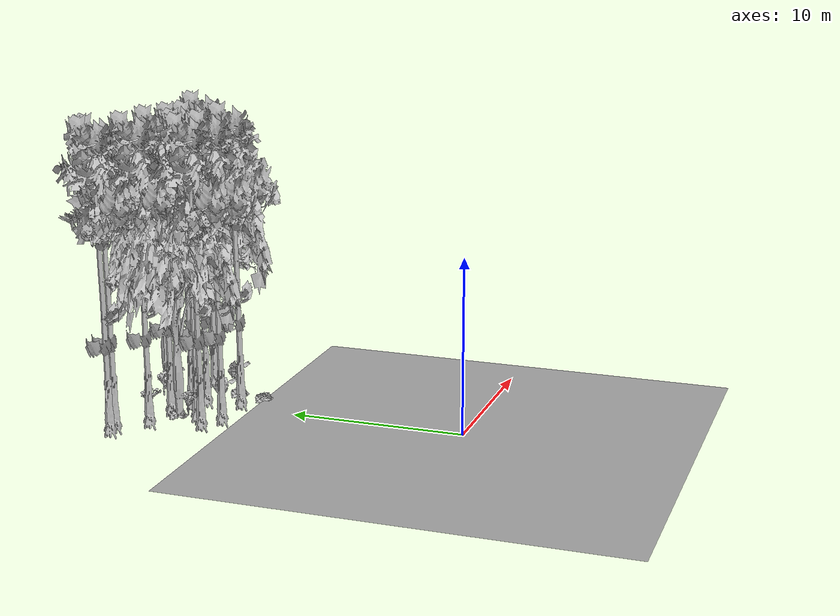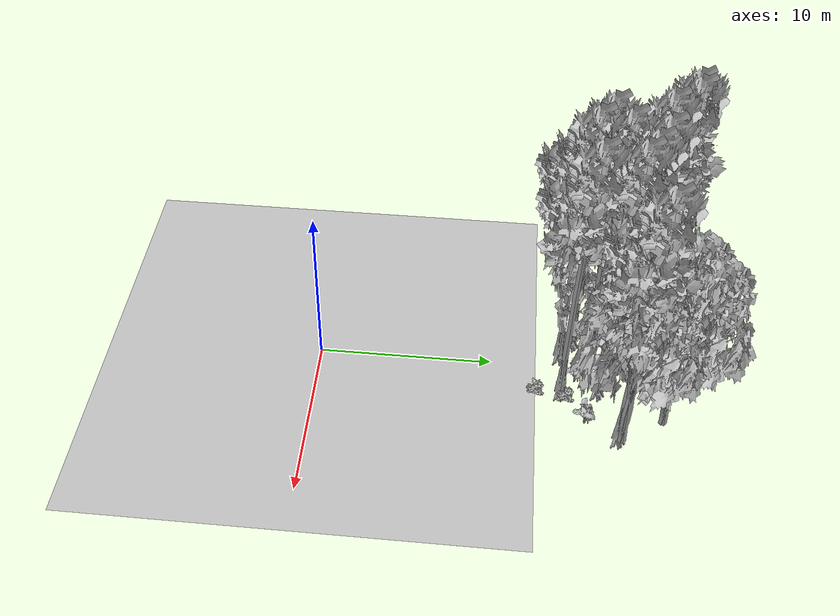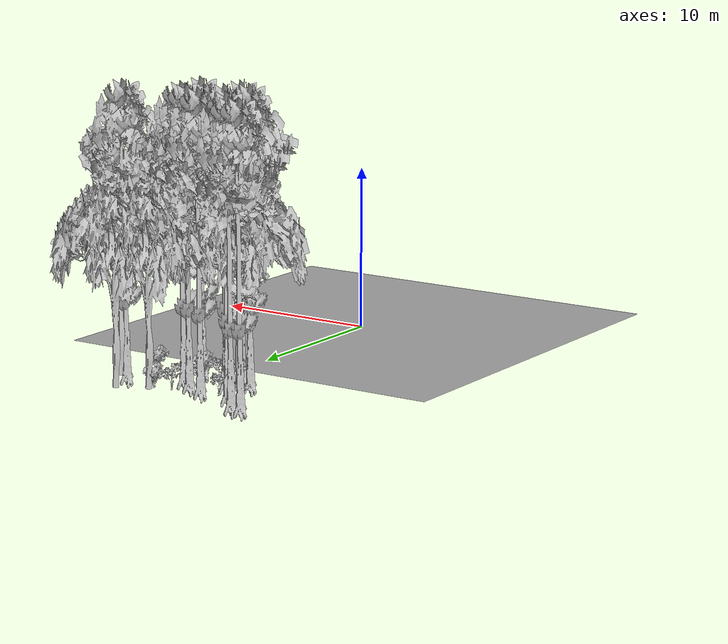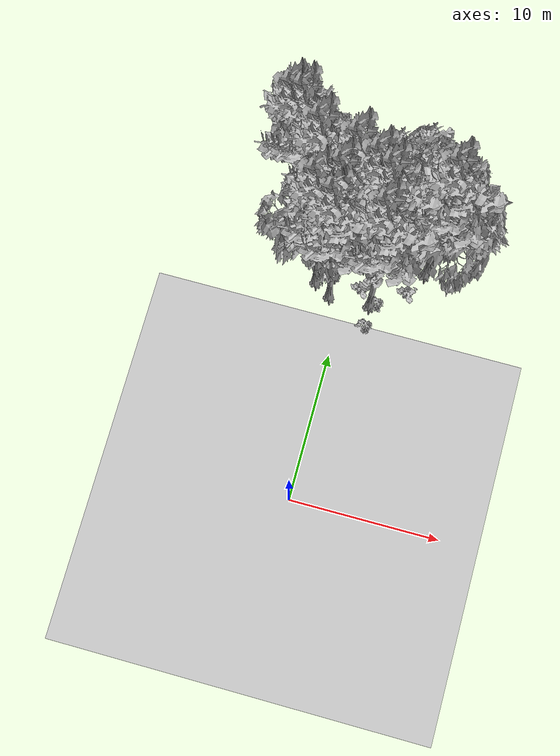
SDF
<sdf version="1.7">
 <world name="default">
  <model name="ground_plane">
   <static>1</static>
   <link name="link">
    <collision name="collision">
     <pose>-50 0 0 0 -0 0</pose>
     <geometry><plane><normal>0 0 1</normal><size>80 80</size></plane></geometry>
     <surface><contact><ode><min_depth>0.01</min_depth><max_vel>0</max_vel></ode></contact></surface>
    </collision>
    <visual name="grass">
     <cast_shadows>0</cast_shadows>
     <geometry>
      <mesh>
       <scale>0.46714285714285714 0.46714285714285714 0.1</scale>
       <uri>file://grass_plane/meshes/grass_plane.dae</uri>
      </mesh>
     </geometry>
    </visual>
   </link>
  </model>
  <model name="Tree 32">
   <static>1</static>
   <pose>-2.211010788499962 14.745970186259889 0 1.57079 -0 0</pose>
   <link name="link">
    <collision name="collision">
     <geometry><mesh><scale>3.5 5 3.5</scale><uri>model://tree_9/meshes/tree_9.obj</uri></mesh></geometry>
    </collision>
    <visual name="visual">
     <geometry><mesh><scale>3.5 5 3.5</scale><uri>model://tree_9/meshes/tree_9.obj</uri></mesh></geometry>
    </visual>
   </link>
  </model>
  <model name="Tree 160">
   <static>1</static>
   <pose>-1.0625133277352532 13.993021969646918 0 1.57079 -0 0</pose>
   <link name="link">
    <collision name="collision">
     <geometry><mesh><scale>3.5 5 3.5</scale><uri>model://tree_9/meshes/tree_9.obj</uri></mesh></geometry>
    </collision>
    <visual name="visual">
     <geometry><mesh><scale>3.5 5 3.5</scale><uri>model://tree_9/meshes/tree_9.obj</uri></mesh></geometry>
    </visual>
   </link>
  </model>
  <model name="Tree 226">
   <static>1</static>
   <pose>-2.415111901193036 16.012753184863435 0 1.57079 -0 0</pose>
   <link name="link">
    <collision name="collision">
     <geometry><mesh><scale>3.5 5 3.5</scale><uri>model://tree_2/meshes/tree_2.obj</uri></mesh></geometry>
    </collision>
    <visual name="visual">
     <geometry><mesh><scale>3.5 5 3.5</scale><uri>model://tree_2/meshes/tree_2.obj</uri></mesh></geometry>
    </visual>
   </link>
  </model>
  <model name="Tree 227">
   <static>1</static>
   <pose>-4.0903618427498145 19.15157052448214 0 1.57079 -0 0</pose>
   <link name="link">
    <collision name="collision">
     <geometry><mesh><scale>3.5 5 3.5</scale><uri>model://tree_9/meshes/tree_9.obj</uri></mesh></geometry>
    </collision>
    <visual name="visual">
     <geometry><mesh><scale>3.5 5 3.5</scale><uri>model://tree_9/meshes/tree_9.obj</uri></mesh></geometry>
    </visual>
   </link>
  </model>
  <model name="Tree 231">
   <static>1</static>
   <pose>-0.6444394086604746 17.389376756947883 0 1.57079 -0 0</pose>
   <link name="link">
    <collision name="collision">
     <geometry><mesh><scale>3.5 5 3.5</scale><uri>model://tree_9/meshes/tree_9.obj</uri></mesh></geometry>
    </collision>
    <visual name="visual">
     <geometry><mesh><scale>3.5 5 3.5</scale><uri>model://tree_9/meshes/tree_9.obj</uri></mesh></geometry>
    </visual>
   </link>
  </model>
  <model name="Tree 276">
   <static>1</static>
   <pose>3.5127701864332224 19.674306518027038 0 1.57079 -0 0</pose>
   <link name="link">
    <collision name="collision">
     <geometry><mesh><scale>3.5 5 3.5</scale><uri>model://tree_2/meshes/tree_2.obj</uri></mesh></geometry>
    </collision>
    <visual name="visual">
     <geometry><mesh><scale>3.5 5 3.5</scale><uri>model://tree_2/meshes/tree_2.obj</uri></mesh></geometry>
    </visual>
   </link>
  </model>
  <model name="Tree 289">
   <static>1</static>
   <pose>0.6661434180624823 16.70851243980956 0 1.57079 -0 0</pose>
   <link name="link">
    <collision name="collision">
     <geometry><mesh><scale>3.5 5 3.5</scale><uri>model://tree_9/meshes/tree_9.obj</uri></mesh></geometry>
    </collision>
    <visual name="visual">
     <geometry><mesh><scale>3.5 5 3.5</scale><uri>model://tree_9/meshes/tree_9.obj</uri></mesh></geometry>
    </visual>
   </link>
  </model>
  <model name="Tree 294">
   <static>1</static>
   <pose>1.7688372139915458 18.87727992651417 0 1.57079 -0 0</pose>
   <link name="link">
    <collision name="collision">
     <geometry><mesh><scale>3.5 5 3.5</scale><uri>model://tree_2/meshes/tree_2.obj</uri></mesh></geometry>
    </collision>
    <visual name="visual">
     <geometry><mesh><scale>3.5 5 3.5</scale><uri>model://tree_2/meshes/tree_2.obj</uri></mesh></geometry>
    </visual>
   </link>
  </model>
  <model name="Tree 298">
   <static>1</static>
   <pose>4.8116859067921425 17.195097264736923 0 1.57079 -0 0</pose>
   <link name="link">
    <collision name="collision">
     <geometry><mesh><scale>3.5 5 3.5</scale><uri>model://tree_9/meshes/tree_9.obj</uri></mesh></geometry>
    </collision>
    <visual name="visual">
     <geometry><mesh><scale>3.5 5 3.5</scale><uri>model://tree_9/meshes/tree_9.obj</uri></mesh></geometry>
    </visual>
   </link>
  </model>
  <model name="Tree 440">
   <static>1</static>
   <pose>-4.730386867249145 19.141418326548376 0 1.57079 -0 0</pose>
   <link name="link">
    <collision name="collision">
     <geometry><mesh><scale>3.5 5 3.5</scale><uri>model://tree_9/meshes/tree_9.obj</uri></mesh></geometry>
    </collision>
    <visual name="visual">
     <geometry><mesh><scale>3.5 5 3.5</scale><uri>model://tree_9/meshes/tree_9.obj</uri></mesh></geometry>
    </visual>
   </link>
  </model>
  <model name="Tree 443">
   <static>1</static>
   <pose>-1.0749345735249562 15.549331015186624 0 1.57079 -0 0</pose>
   <link name="link">
    <collision name="collision">
     <geometry><mesh><scale>3.5 5 3.5</scale><uri>model://tree_9/meshes/tree_9.obj</uri></mesh></geometry>
    </collision>
    <visual name="visual">
     <geometry><mesh><scale>3.5 5 3.5</scale><uri>model://tree_9/meshes/tree_9.obj</uri></mesh></geometry>
    </visual>
   </link>
  </model>
  <model name="Tree 515">
   <static>1</static>
   <pose>5.019973817405713 17.351699582494327 0 1.57079 -0 0</pose>
   <link name="link">
    <collision name="collision">
     <geometry><mesh><scale>3.5 5 3.5</scale><uri>model://tree_2/meshes/tree_2.obj</uri></mesh></geometry>
    </collision>
    <visual name="visual">
     <geometry><mesh><scale>3.5 5 3.5</scale><uri>model://tree_2/meshes/tree_2.obj</uri></mesh></geometry>
    </visual>
   </link>
  </model>
  <model name="Tree 530">
   <static>1</static>
   <pose>1.706826641536125 14.05381780522432 0 1.57079 -0 0</pose>
   <link name="link">
    <collision name="collision">
     <geometry><mesh><scale>3.5 5 3.5</scale><uri>model://tree_9/meshes/tree_9.obj</uri></mesh></geometry>
    </collision>
    <visual name="visual">
     <geometry><mesh><scale>3.5 5 3.5</scale><uri>model://tree_9/meshes/tree_9.obj</uri></mesh></geometry>
    </visual>
   </link>
  </model>
  <model name="Tree 535">
   <static>1</static>
   <pose>1.482548490597381 16.1550704479304 0 1.57079 -0 0</pose>
   <link name="link">
    <collision name="collision">
     <geometry><mesh><scale>3.5 5 3.5</scale><uri>model://tree_9/meshes/tree_9.obj</uri></mesh></geometry>
    </collision>
    <visual name="visual">
     <geometry><mesh><scale>3.5 5 3.5</scale><uri>model://tree_9/meshes/tree_9.obj</uri></mesh></geometry>
    </visual>
   </link>
  </model>
  <model name="Tree 538">
   <static>1</static>
   <pose>-2.780933831982516 17.697032057505325 0 1.57079 -0 0</pose>
   <link name="link">
    <collision name="collision">
     <geometry><mesh><scale>3.5 5 3.5</scale><uri>model://tree_9/meshes/tree_9.obj</uri></mesh></geometry>
    </collision>
    <visual name="visual">
     <geometry><mesh><scale>3.5 5 3.5</scale><uri>model://tree_9/meshes/tree_9.obj</uri></mesh></geometry>
    </visual>
   </link>
  </model>
  <model name="Bush 234">
   <static>1</static>
   <pose>2.077219256044728 14.327137941605699 0 1.57079 -0 0</pose>
   <link name="link">
    <collision name="collision">
     <geometry><mesh><scale>2 2 2</scale><uri>model://bush_2/meshes/bush_2.obj</uri></mesh></geometry>
     <surface><contact><collide_without_contact>false</collide_without_contact></contact></surface>
    </collision>
    <visual name="visual">
     <geometry><mesh><scale>2 2 2</scale><uri>model://bush_2/meshes/bush_2.obj</uri></mesh></geometry>
    </visual>
   </link>
  </model>
  <model name="Bush 303">
   <static>1</static>
   <pose>4.041465393816225 15.374945271335925 0 1.57079 -0 0</pose>
   <link name="link">
    <collision name="collision">
     <geometry><mesh><scale>2 2 2</scale><uri>model://bush_0/meshes/bush_0.obj</uri></mesh></geometry>
     <surface><contact><collide_without_contact>false</collide_without_contact></contact></surface>
    </collision>
    <visual name="visual">
     <geometry><mesh><scale>2 2 2</scale><uri>model://bush_0/meshes/bush_0.obj</uri></mesh></geometry>
    </visual>
   </link>
  </model>
  <model name="Bush 304">
   <static>1</static>
   <pose>0.5822049672851435 18.47011359764175 0 1.57079 -0 0</pose>
   <link name="link">
    <collision name="collision">
     <geometry><mesh><scale>2 2 2</scale><uri>model://bush_5/meshes/bush_5.obj</uri></mesh></geometry>
     <surface><contact><collide_without_contact>false</collide_without_contact></contact></surface>
    </collision>
    <visual name="visual">
     <geometry><mesh><scale>2 2 2</scale><uri>model://bush_5/meshes/bush_5.obj</uri></mesh></geometry>
    </visual>
   </link>
  </model>
  <model name="Bush 324">
   <static>1</static>
   <pose>1.752795954278561 18.577550841941076 0 1.57079 -0 0</pose>
   <link name="link">
    <collision name="collision">
     <geometry><mesh><scale>2 2 2</scale><uri>model://bush_0/meshes/bush_0.obj</uri></mesh></geometry>
     <surface><contact><collide_without_contact>false</collide_without_contact></contact></surface>
    </collision>
    <visual name="visual">
     <geometry><mesh><scale>2 2 2</scale><uri>model://bush_0/meshes/bush_0.obj</uri></mesh></geometry>
    </visual>
   </link>
  </model>
  <model name="Bush 387">
   <static>1</static>
   <pose>-1.9661002590930323 15.641780153889322 0 1.57079 -0 0</pose>
   <link name="link">
    <collision name="collision">
     <geometry><mesh><scale>2 2 2</scale><uri>model://bush_5/meshes/bush_5.obj</uri></mesh></geometry>
     <surface><contact><collide_without_contact>false</collide_without_contact></contact></surface>
    </collision>
    <visual name="visual">
     <geometry><mesh><scale>2 2 2</scale><uri>model://bush_5/meshes/bush_5.obj</uri></mesh></geometry>
    </visual>
   </link>
  </model>
  <model name="Bush 456">
   <static>1</static>
   <pose>1.7282600849588903 12.609528966641399 0 1.57079 -0 0</pose>
   <link name="link">
    <collision name="collision">
     <geometry><mesh><scale>2 2 2</scale><uri>model://bush_2/meshes/bush_2.obj</uri></mesh></geometry>
     <surface><contact><collide_without_contact>false</collide_without_contact></contact></surface>
    </collision>
    <visual name="visual">
     <geometry><mesh><scale>2 2 2</scale><uri>model://bush_2/meshes/bush_2.obj</uri></mesh></geometry>
    </visual>
   </link>
  </model>
  <model name="Bush 552">
   <static>1</static>
   <pose>-2.406080020813569 16.091868089839885 0 1.57079 -0 0</pose>
   <link name="link">
    <collision name="collision">
     <geometry><mesh><scale>2 2 2</scale><uri>model://bush_2/meshes/bush_2.obj</uri></mesh></geometry>
     <surface><contact><collide_without_contact>false</collide_without_contact></contact></surface>
    </collision>
    <visual name="visual">
     <geometry><mesh><scale>2 2 2</scale><uri>model://bush_2/meshes/bush_2.obj</uri></mesh></geometry>
    </visual>
   </link>
  </model>
  <model name="Bush 604">
   <static>1</static>
   <pose>-2.373429375131117 17.97441779340489 0 1.57079 -0 0</pose>
   <link name="link">
    <collision name="collision">
     <geometry><mesh><scale>2 2 2</scale><uri>model://bush_5/meshes/bush_5.obj</uri></mesh></geometry>
     <surface><contact><collide_without_contact>false</collide_without_contact></contact></surface>
    </collision>
    <visual name="visual">
     <geometry><mesh><scale>2 2 2</scale><uri>model://bush_5/meshes/bush_5.obj</uri></mesh></geometry>
    </visual>
   </link>
  </model>
  <model name="Bush 629">
   <static>1</static>
   <pose>1.027687143822142 14.863823885754918 0 1.57079 -0 0</pose>
   <link name="link">
    <collision name="collision">
     <geometry><mesh><scale>2 2 2</scale><uri>model://bush_0/meshes/bush_0.obj</uri></mesh></geometry>
     <surface><contact><collide_without_contact>false</collide_without_contact></contact></surface>
    </collision>
    <visual name="visual">
     <geometry><mesh><scale>2 2 2</scale><uri>model://bush_0/meshes/bush_0.obj</uri></mesh></geometry>
    </visual>
   </link>
  </model>
 </world>
</sdf>
